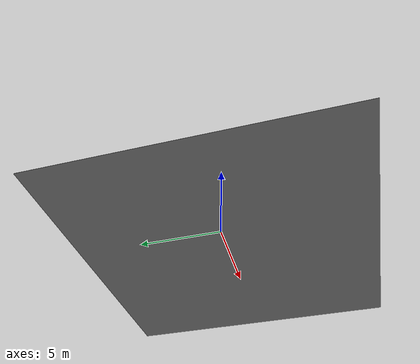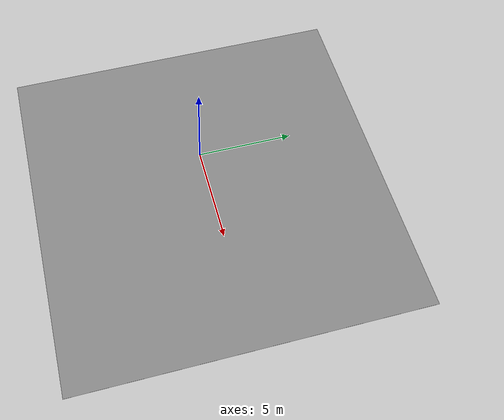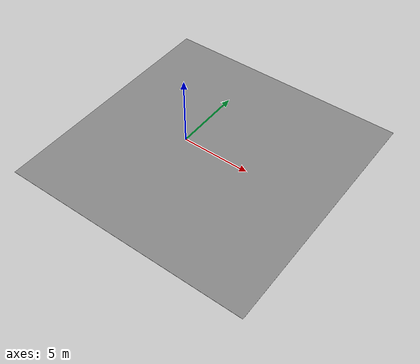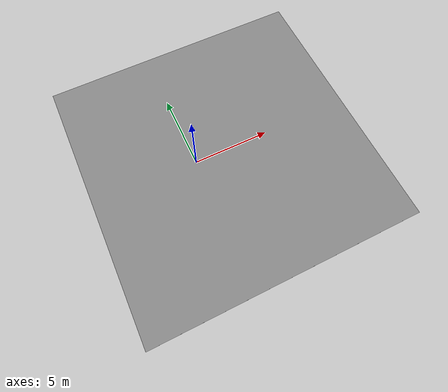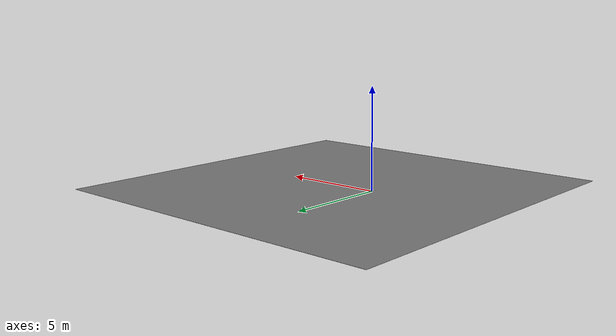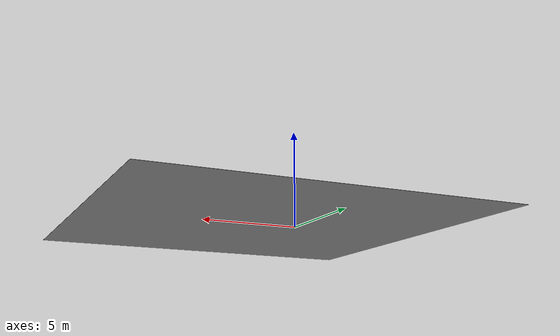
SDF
<?xml version="1.0"?>
<sdf version='1.3'>
  <model name="slab">
    <pose>2 0 0 0 0 0</pose>
    <static>true</static>
    <link name="link">
      <inertial>
        <mass>1.0</mass>
        <inertia>
          <ixx>0.0</ixx>
          <ixy>0.0</ixy>
          <ixz>0.0</ixz>
          <iyy>0.332</iyy>
          <iyz>0.0</iyz>
          <izz>0.332</izz>
        </inertia>
      </inertial>

      <collision name="collision">
        <geometry>
          <box>
            <size>18 18 0.01</size>
          </box>
        </geometry>
      </collision>

      <visual name="visual">
        <geometry>
          <box>
            <size>18 18 0.01</size>
          </box>
        </geometry>
        <material>
          <ambient>0.5 0.5 0.5 1</ambient>
          <diffuse>0.5 0.5 0.5 1</diffuse>
          <specular>0.1 0.1 0.1 1</specular>
        </material>
      </visual>

    </link>
  </model>
</sdf>
